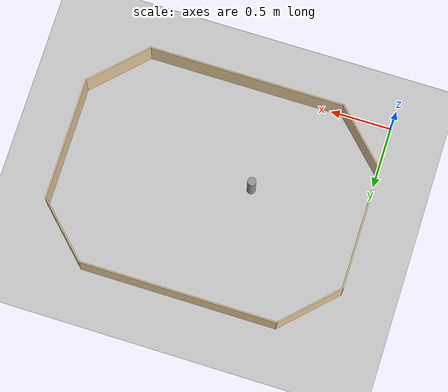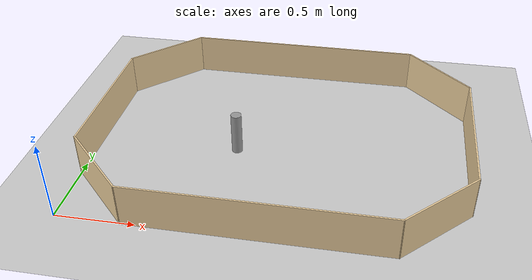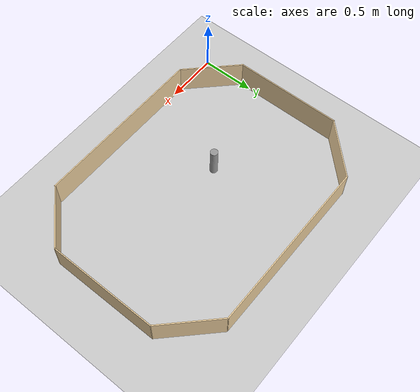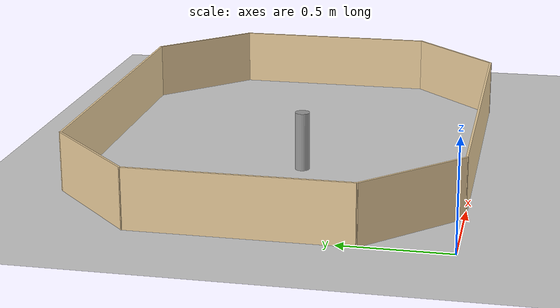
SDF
<sdf version="1.4">
 <world name="default">
  <scene><ambient>0.5 0.5 0.5 1.0</ambient><shadows>0</shadows></scene>
  <include><uri>model://ground_plane</uri></include>
  <include><uri>model://sun</uri></include>
  <model name="unit_cylinder1_1">
   <link name="link">
    <pose>0.92 0.81 0.14 0 -0 0</pose>
    <inertial>
     <mass>1</mass>
     <inertia><ixx>0.145833</ixx><ixy>0</ixy><ixz>0</ixz><iyy>0.145833</iyy><iyz>0</iyz><izz>0.125</izz></inertia>
    </inertial>
    <visual name="visual">
     <geometry><cylinder><radius>0.035</radius><length>0.28</length></cylinder></geometry>
     <material>
      <script><name>Gazebo/Grey</name><uri>file://media/materials/scripts/gazebo.material</uri></script>
      <ambient>0.3 0.3 0.3 1</ambient>
      <diffuse>0.7 0.7 0.7 1</diffuse>
      <specular>0.01 0.01 0.01 1</specular>
      <emissive>0 0 0 1</emissive>
      <shader type="vertex"><normal_map>__default__</normal_map></shader>
     </material>
    </visual>
    <collision name="collision">
     <geometry><cylinder><radius>0.035</radius><length>0.28</length></cylinder></geometry>
     <surface>
      <friction>
       <ode><mu>1</mu><mu2>1</mu2><fdir1>0 0 0</fdir1><slip1>0</slip1><slip2>0</slip2></ode>
       <torsional>
        <coefficient>1</coefficient>
        <patch_radius>0</patch_radius>
        <surface_radius>0</surface_radius>
        <use_patch_radius>1</use_patch_radius>
        <ode><slip>0</slip></ode>
       </torsional>
      </friction>
      <bounce><restitution_coefficient>0</restitution_coefficient><threshold>1e+06</threshold></bounce>
      <contact>
       <collide_without_contact>0</collide_without_contact>
       <collide_without_contact_bitmask>1</collide_without_contact_bitmask>
       <collide_bitmask>1</collide_bitmask>
       <ode>
        <soft_cfm>0</soft_cfm>
        <soft_erp>0.2</soft_erp>
        <kp>1e+13</kp>
        <kd>1</kd>
        <max_vel>0.01</max_vel>
        <min_depth>0</min_depth>
       </ode>
       <bullet>
        <split_impulse>1</split_impulse>
        <split_impulse_penetration_threshold>-0.01</split_impulse_penetration_threshold>
        <soft_cfm>0</soft_cfm>
        <soft_erp>0.2</soft_erp>
        <kp>1e+13</kp>
        <kd>1</kd>
       </bullet>
      </contact>
     </surface>
    </collision>
   </link>
   <static>1</static>
  </model>
  <model name="small_outer_box">
   <pose>1.21 0.91 0 0 -0 0</pose>
   <link name="Wall_0">
    <collision name="Wall_0_Collision">
     <geometry><box><size>0.589828 0.01 0.28</size></box></geometry>
     <pose>0 0 0.14 0 -0 0</pose>
    </collision>
    <visual name="Wall_0_Visual">
     <pose>0 0 0.14 0 -0 0</pose>
     <geometry><box><size>0.589828 0.01 0.28</size></box></geometry>
     <material>
      <script><uri>file://media/materials/scripts/gazebo.material</uri><name>Gazebo/Grey</name></script>
      <ambient>0.921569 0.807843 0.615686 1</ambient>
     </material>
     <meta><layer>0</layer></meta>
    </visual>
    <pose>-1.005 -0.705 0 0 0 -0.785398</pose>
   </link>
   <link name="Wall_10">
    <collision name="Wall_10_Collision">
     <geometry><box><size>1.61 0.01 0.28</size></box></geometry>
     <pose>0 0 0.14 0 -0 0</pose>
    </collision>
    <visual name="Wall_10_Visual">
     <pose>0 0 0.14 0 -0 0</pose>
     <geometry><box><size>1.61 0.01 0.28</size></box></geometry>
     <material>
      <script><uri>file://media/materials/scripts/gazebo.material</uri><name>Gazebo/Grey</name></script>
      <ambient>0.921569 0.807843 0.615686 1</ambient>
     </material>
     <meta><layer>0</layer></meta>
    </visual>
    <pose>0 0.91 0 0 -0 3.14159</pose>
   </link>
   <link name="Wall_12">
    <collision name="Wall_12_Collision">
     <geometry><box><size>0.589828 0.01 0.28</size></box></geometry>
     <pose>0 0 0.14 0 -0 0</pose>
    </collision>
    <visual name="Wall_12_Visual">
     <pose>0 0 0.14 0 -0 0</pose>
     <geometry><box><size>0.589828 0.01 0.28</size></box></geometry>
     <material>
      <script><uri>file://media/materials/scripts/gazebo.material</uri><name>Gazebo/Grey</name></script>
      <ambient>0.921569 0.807843 0.615686 1</ambient>
     </material>
     <meta><layer>0</layer></meta>
    </visual>
    <pose>-1.005 0.705 0 0 0 -2.35619</pose>
   </link>
   <link name="Wall_14">
    <collision name="Wall_14_Collision">
     <geometry><box><size>1.01 0.01 0.28</size></box></geometry>
     <pose>0 0 0.14 0 -0 0</pose>
    </collision>
    <visual name="Wall_14_Visual">
     <pose>0 0 0.14 0 -0 0</pose>
     <geometry><box><size>1.01 0.01 0.28</size></box></geometry>
     <material>
      <script><uri>file://media/materials/scripts/gazebo.material</uri><name>Gazebo/Grey</name></script>
      <ambient>0.921569 0.807843 0.615686 1</ambient>
     </material>
     <meta><layer>0</layer></meta>
    </visual>
    <pose>-1.21 0 0 0 0 -1.5708</pose>
   </link>
   <link name="Wall_2">
    <collision name="Wall_2_Collision">
     <geometry><box><size>1.61 0.01 0.28</size></box></geometry>
     <pose>0 0 0.14 0 -0 0</pose>
    </collision>
    <visual name="Wall_2_Visual">
     <pose>0 0 0.14 0 -0 0</pose>
     <geometry><box><size>1.61 0.01 0.28</size></box></geometry>
     <material>
      <script><uri>file://media/materials/scripts/gazebo.material</uri><name>Gazebo/Grey</name></script>
      <ambient>0.921569 0.807843 0.615686 1</ambient>
     </material>
     <meta><layer>0</layer></meta>
    </visual>
    <pose>0 -0.91 0 0 -0 0</pose>
   </link>
   <link name="Wall_4">
    <collision name="Wall_4_Collision">
     <geometry><box><size>0.589828 0.01 0.28</size></box></geometry>
     <pose>0 0 0.14 0 -0 0</pose>
    </collision>
    <visual name="Wall_4_Visual">
     <pose>0 0 0.14 0 -0 0</pose>
     <geometry><box><size>0.589828 0.01 0.28</size></box></geometry>
     <material>
      <script><uri>file://media/materials/scripts/gazebo.material</uri><name>Gazebo/Grey</name></script>
      <ambient>0.921569 0.807843 0.615686 1</ambient>
     </material>
     <meta><layer>0</layer></meta>
    </visual>
    <pose>1.005 -0.705 0 0 -0 0.785398</pose>
   </link>
   <link name="Wall_6">
    <collision name="Wall_6_Collision">
     <geometry><box><size>1.01 0.01 0.28</size></box></geometry>
     <pose>0 0 0.14 0 -0 0</pose>
    </collision>
    <visual name="Wall_6_Visual">
     <pose>0 0 0.14 0 -0 0</pose>
     <geometry><box><size>1.01 0.01 0.28</size></box></geometry>
     <material>
      <script><uri>file://media/materials/scripts/gazebo.material</uri><name>Gazebo/Grey</name></script>
      <ambient>0.921569 0.807843 0.615686 1</ambient>
     </material>
     <meta><layer>0</layer></meta>
    </visual>
    <pose>1.21 0 0 0 -0 1.5708</pose>
   </link>
   <link name="Wall_8">
    <collision name="Wall_8_Collision">
     <geometry><box><size>0.589828 0.01 0.28</size></box></geometry>
     <pose>0 0 0.14 0 -0 0</pose>
    </collision>
    <visual name="Wall_8_Visual">
     <pose>0 0 0.14 0 -0 0</pose>
     <geometry><box><size>0.589828 0.01 0.28</size></box></geometry>
     <material>
      <script><uri>file://media/materials/scripts/gazebo.material</uri><name>Gazebo/Grey</name></script>
      <ambient>0.921569 0.807843 0.615686 1</ambient>
     </material>
     <meta><layer>0</layer></meta>
    </visual>
    <pose>1.005 0.705 0 0 -0 2.35619</pose>
   </link>
   <static>1</static>
  </model>
 </world>
</sdf>
